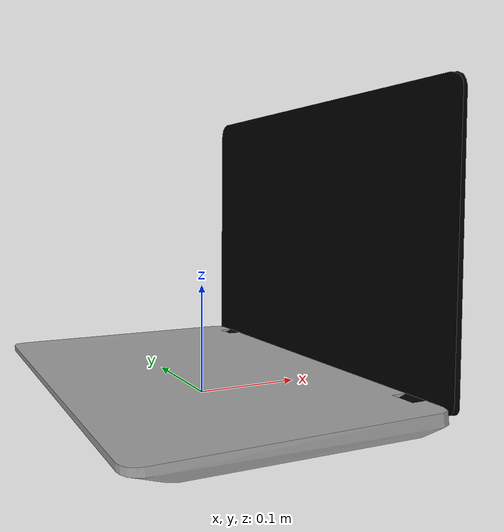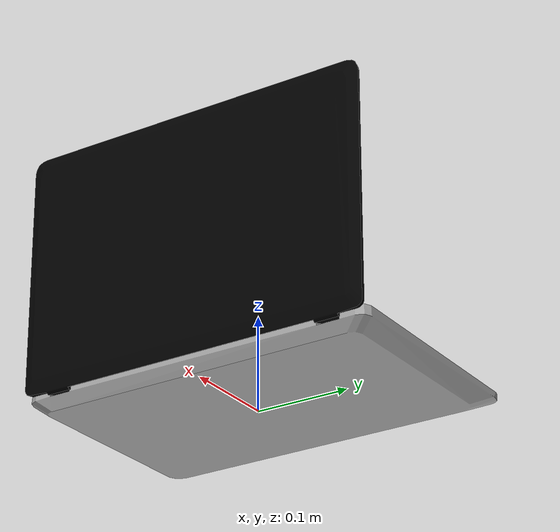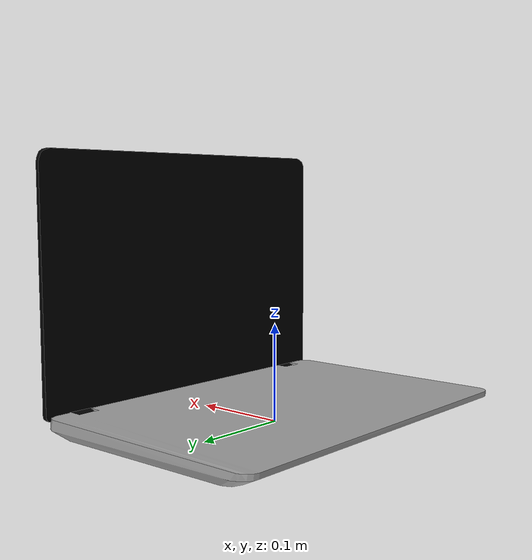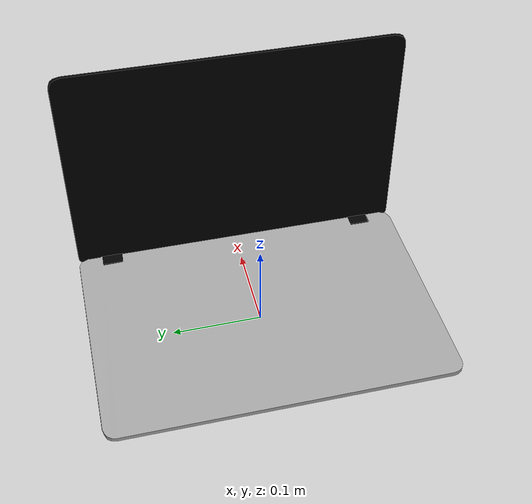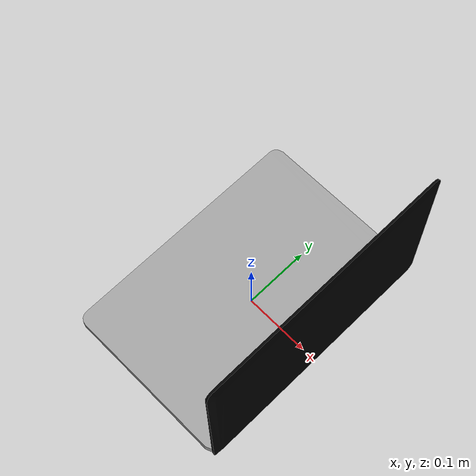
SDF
<?xml version="1.0" ?>
<sdf version="1.5">
  <model name="laptop">
    <link name="link">
      <pose>0 0 0 0 0 0</pose>
      <collision name="collision">
        <geometry>
          <mesh>
            <uri>model://laptop/meshes/model.dae</uri>
          </mesh>
        </geometry>
      </collision>
      <visual name="visual">
        <geometry>
          <mesh>
            <uri>model://laptop/meshes/model.dae</uri>
          </mesh>
        </geometry>
      </visual>
    </link>
    <static>1</static>
  </model>
</sdf>
